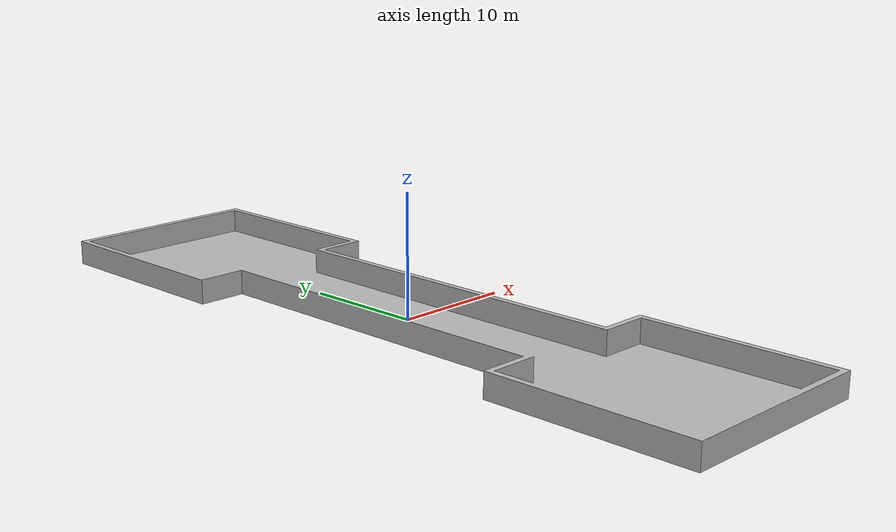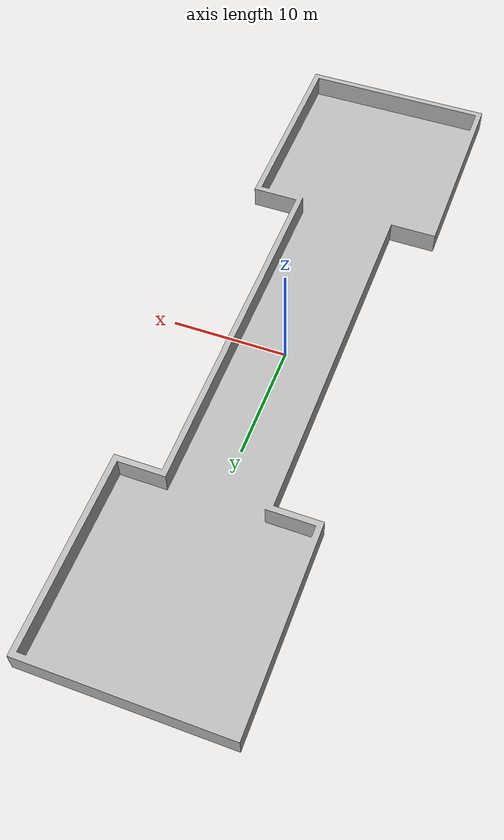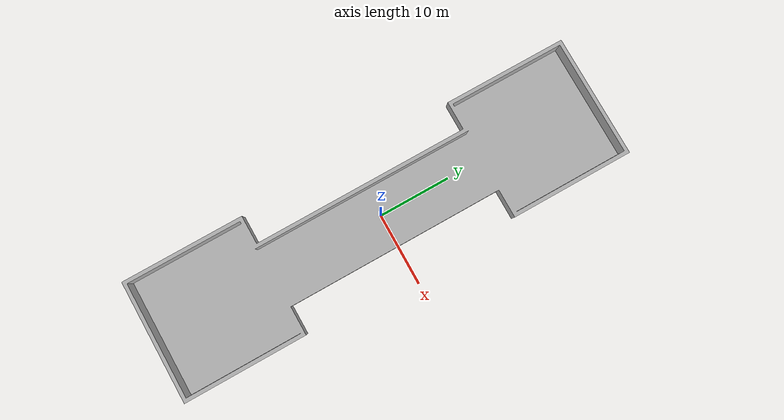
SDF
<sdf version="1.7">
 <world name="world">
  <scene>
   <ambient>0.8 0.8 0.8 1</ambient>
   <background>0 0 0 1</background>
   <grid>0</grid>
   <shadows>0</shadows>
   <grid>false</grid>
   <origin_visual>false</origin_visual>
  </scene>
  <light name="sun" type="directional">
   <cast_shadows>0</cast_shadows>
   <pose>0 0 10 0 -0 0</pose>
   <diffuse>0.8 0.8 0.8 1</diffuse>
   <specular>0.2 0.2 0.2 1</specular>
   <attenuation>
    <range>1000</range>
    <constant>0.9</constant>
    <linear>0.01</linear>
    <quadratic>0.001</quadratic>
   </attenuation>
   <direction>-0.5 0.1 -0.9</direction>
   <spot><inner_angle>0</inner_angle><outer_angle>0</outer_angle><falloff>0</falloff></spot>
  </light>
  <model name="Campus">
   <static>1</static>
   <link name="floor_1">
    <visual name="visual">
     <pose>0 0 -0.25 0 -0 0</pose>
     <geometry><mesh><uri>model://arena_rooms1/meshes/arena_rooms1.obj</uri></mesh></geometry>
    </visual>
    <collision name="collision">
     <pose>0 0 -0.25 0 -0 0</pose>
     <geometry><mesh><uri>model://arena_rooms1/meshes/arena_rooms1.obj</uri></mesh></geometry>
    </collision>
   </link>
   <pose>0.086099 -32.172443 1.159207 0 -0 0</pose>
  </model>
  <model name="campus_L1"><static>1</static><pose>-22000 -31500 0 0 -0 0</pose></model>
  <gravity>0 0 -9.8</gravity>
  <magnetic_field>6e-06 2.3e-05 -4.2e-05</magnetic_field>
  <atmosphere type="adiabatic"/>
  <physics type="ode">
   <max_step_size>0.001</max_step_size>
   <real_time_factor>1</real_time_factor>
   <real_time_update_rate>1000</real_time_update_rate>
  </physics>
  <spherical_coordinates>
   <surface_model>EARTH_WGS84</surface_model>
   <latitude_deg>0</latitude_deg>
   <longitude_deg>0</longitude_deg>
   <elevation>0</elevation>
   <heading_deg>0</heading_deg>
  </spherical_coordinates>
  <offset>22000 31500 0 0 0 0</offset>
  <crs>EPSG:3414</crs>
 </world>
</sdf>
